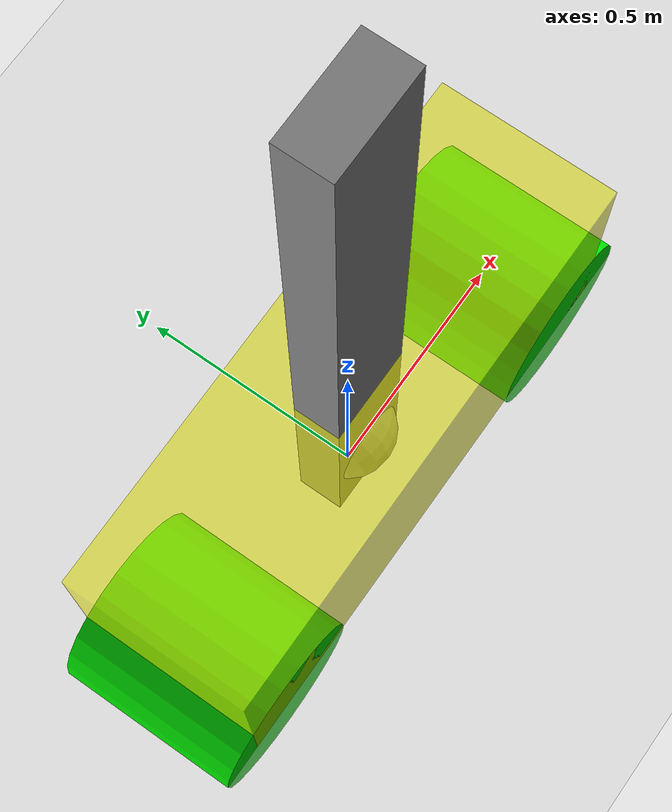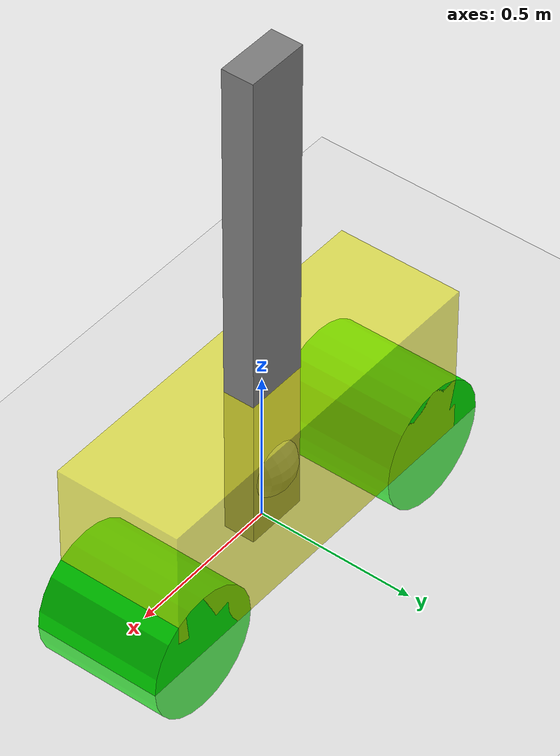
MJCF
<mujoco>
	<option gravity = "0 0 -9.81"/>
	<worldbody>
        <light diffuse=".8 .8 .8" pos="0 0 5" dir="0 0 -1"/>
		<geom type="plane" size="5 5 0.1" rgba=".9 .9 .9 1"/>
		<body name="chassis" pos="0 0 0.2" euler="0 90 0">
			<joint type="free"/>
			<geom type="box" size=".3 .2 .6" rgba=".9 .9 0 0.6"/>
			<site name="marker" pos="0 0 0" size="0.1"/>
			<body pos="0.2 0 .5" euler="90 0 0">
				<joint name="front_left_wheel" type="hinge" axis="0 0 -1"/>
				<geom type="cylinder" size=".2 .20" rgba="0 .9 0 1"/>
			</body>
			<body pos="0.2 0 -0.5" euler="90 0 0">
				<joint name="front_right_wheel" type="hinge" axis="0 0 -1"/>
				<geom type="cylinder" size=".2 .20" rgba="0 .9 0 1"/>
			</body>
			<body name="child_body" pos="-0.6 0 0">
				<joint name="my_pin_joint" type="hinge" pos="0.6 0 0" axis="0.1 1 0.1"/>
				<geom type="box" size="0.8 0.05 0.10" contype="0" conaffinity="0"/>
			</body>
		</body>
	</worldbody>
	<sensor>
		<framepos objtype="site" objname="marker"/>
	</sensor>
	<actuator>
		<motor name="front_left_force_servo" joint="front_left_wheel" forcerange="-100 100"/>
		<motor name="front_right_force_servo" joint="front_right_wheel" forcerange="-100 100"/>
	</actuator>
</mujoco>
